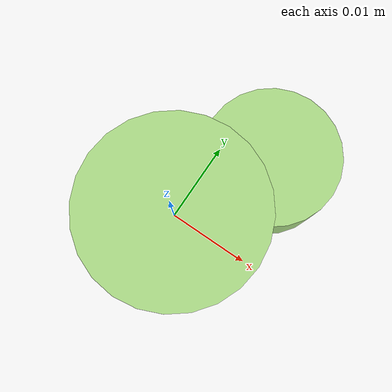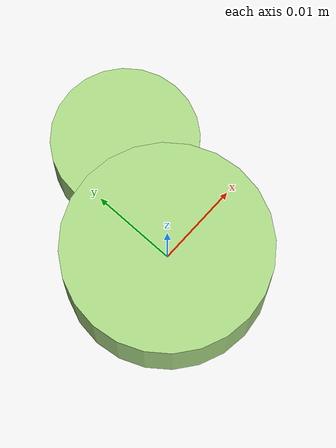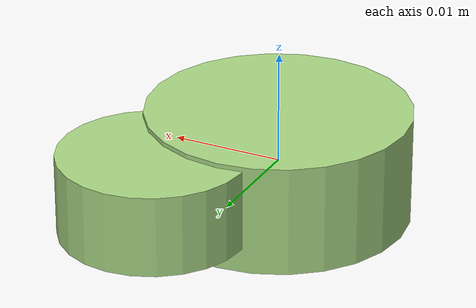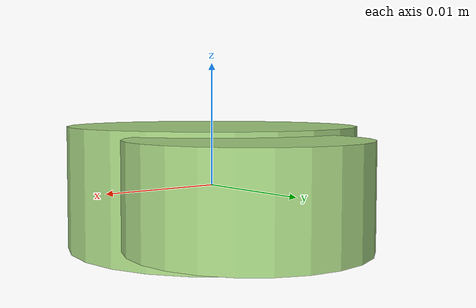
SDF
<?xml version="1.0" ?>
<!-- |    This document was autogenerated by xmacro from data/veggie_template/veggie_base.sdf.xacro  | -->
<!-- |    EDITING THIS FILE BY HAND IS NOT RECOMMENDED                                               | -->
<sdf version="1.8">
	<!-- Parameters -->
	<!-- Base -->
	<!-- Joint 0 -->
	<!-- Link 1 -->
	<!-- Joint 1 -->
	<!-- Link 2 -->
	<!-- Primitives -->
	<!-- All dimensions are half -->
	<!-- Object -->
	<model name="veggie">
		<!-- link0 -->
		<link name="link0">
			<inertial>
				<mass>0.004260073436879804</mass>
				<inertia>
					<ixx>1.8118164613664092e-07</ixx>
					<ixy>0</ixy>
					<ixz>0</ixz>
					<iyy>1.8118164613664092e-07</iyy>
					<iyz>0</iyz>
					<izz>2.9368815137089253e-07</izz>
				</inertia>
			</inertial>
			<visual name="link0_visual">
				<pose>0 0 0 0 0 0</pose>
				<geometry>
					<cylinder>
						<radius>0.011742205259024927</radius>
						<length>0.009834830103887736</length>
					</cylinder>
				</geometry>
				<material>
					<ambient>0.659 0.839 0.514 1</ambient>
					<diffuse>0.659 0.839 0.514 1</diffuse>
					<specular>0 0 0 0</specular>
					<emissive>0 0 0 1</emissive>
				</material>
			</visual>
			<collision name="link0_collision">
				<pose>0 0 0 0 0 0 </pose>
				<geometry>
					<cylinder>
						<radius>0.011742205259024927</radius>
						<length>0.009834830103887736</length>
					</cylinder>
				</geometry>
			</collision>
		</link>
		<!-- link1 -->
		<joint name="joint0" type="fixed">
			<pose relative_to="link0">0.006030026610810583 0.011676143769427865 0.0009035630880083769 0.0 0.0 0.0</pose>
			<parent>link0</parent>
			<child>link1</child>
		</joint>
		<link name="link1">
			<pose relative_to="joint0">0 0 0 0 0 0</pose>
			<inertial>
				<mass>0.0015533265926736817</mass>
				<inertia>
					<ixx>3.3364907068777085e-08</ixx>
					<ixy>0</ixy>
					<ixz>0</ixz>
					<iyy>3.3364907068777085e-08</iyy>
					<iyz>0</iyz>
					<izz>5.3282741896924883e-08</izz>
				</inertia>
			</inertial>
			<visual name="link1_visual">
				<pose>0 0 0 0 0 0</pose>
				<geometry>
					<cylinder>
						<radius>0.008282794601895143</radius>
						<length>0.007207059466787723</length>
					</cylinder>
				</geometry>
				<material>
					<ambient>0.659 0.839 0.514 1</ambient>
					<diffuse>0.659 0.839 0.514 1</diffuse>
					<specular>0 0 0 0</specular>
					<emissive>0 0 0 1</emissive>
				</material>
			</visual>
			<collision name="link1_collision">
				<pose>0 0 0 0 0 0 </pose>
				<geometry>
					<cylinder>
						<radius>0.008282794601895143</radius>
						<length>0.007207059466787723</length>
					</cylinder>
				</geometry>
			</collision>
		</link>
		<!-- link2 -->
	</model>
</sdf>
